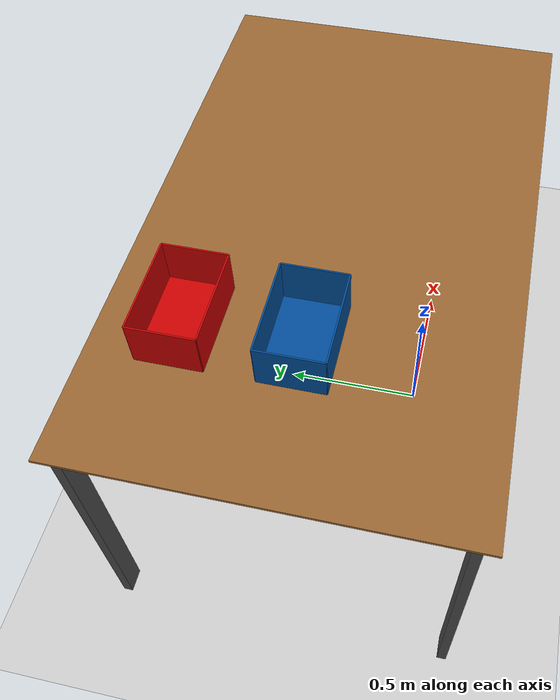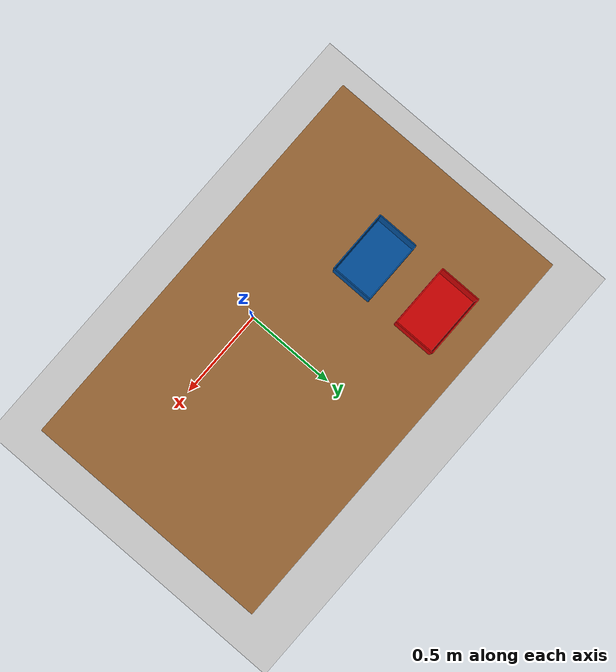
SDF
<sdf version="1.6">
 <world name="default">
  <include><uri>model://ground_plane</uri></include>
  <include><uri>model://sun</uri></include>
  <model name="mesa">
   <static>true</static>
   <pose>0 0.3 0 0 0 0</pose>
   <link name="tablero">
    <pose>0 0 0.98 0 0 0</pose>
    <visual name="visual">
     <geometry><box><size>2.0 1.21 0.01</size></box></geometry>
     <material><ambient>0.6 0.4 0.2 1</ambient><diffuse>0.6 0.4 0.2 1</diffuse></material>
    </visual>
    <collision name="collision"><geometry><box><size>2.0 1.21 0.01</size></box></geometry></collision>
   </link>
   <link name="pata1">
    <pose>-0.95 -0.55 0.49 0 0 0</pose>
    <visual name="visual">
     <geometry><box><size>0.07 0.03 0.98</size></box></geometry>
     <material><ambient>0.3 0.3 0.3 1</ambient></material>
    </visual>
    <collision name="collision"><geometry><box><size>0.07 0.03 0.98</size></box></geometry></collision>
   </link>
   <link name="pata2">
    <pose>0.95 -0.55 0.49 0 0 0</pose>
    <visual name="visual">
     <geometry><box><size>0.07 0.03 0.98</size></box></geometry>
     <material><ambient>0.3 0.3 0.3 1</ambient></material>
    </visual>
    <collision name="collision"><geometry><box><size>0.07 0.03 0.98</size></box></geometry></collision>
   </link>
   <link name="pata3">
    <pose>-0.95 0.55 0.49 0 0 0</pose>
    <visual name="visual">
     <geometry><box><size>0.07 0.03 0.98</size></box></geometry>
     <material><ambient>0.3 0.3 0.3 1</ambient></material>
    </visual>
    <collision name="collision"><geometry><box><size>0.07 0.03 0.98</size></box></geometry></collision>
   </link>
   <link name="pata4">
    <pose>0.95 0.55 0.49 0 0 0</pose>
    <visual name="visual">
     <geometry><box><size>0.07 0.03 0.98</size></box></geometry>
     <material><ambient>0.3 0.3 0.3 1</ambient></material>
    </visual>
    <collision name="collision"><geometry><box><size>0.07 0.03 0.98</size></box></geometry></collision>
   </link>
  </model>
  <model name="dropbox">
   <static>true</static>
   <link name="link">
    <pose>-0.5 0.3 0.99 0 0 0</pose>
    <visual name="base">
     <geometry><box><size>0.3 0.2 0.01</size></box></geometry>
     <material><ambient>0 0.3 0.6 1</ambient></material>
    </visual>
    <collision name="base_collision"><geometry><box><size>0.3 0.2 0.01</size></box></geometry></collision>
    <visual name="wall1">
     <pose>0 0.1 0.075 0 0 0</pose>
     <geometry><box><size>0.3 0.005 0.15</size></box></geometry>
     <material><ambient>0 0.3 0.6 1</ambient></material>
    </visual>
    <collision name="wall1_collision">
     <pose>0 0.1 0.075 0 0 0</pose>
     <geometry><box><size>0.3 0.005 0.15</size></box></geometry>
    </collision>
    <visual name="wall2">
     <pose>0 -0.1 0.075 0 0 0</pose>
     <geometry><box><size>0.3 0.005 0.15</size></box></geometry>
     <material><ambient>0 0.3 0.6 1</ambient></material>
    </visual>
    <collision name="wall2_collision">
     <pose>0 -0.1 0.075 0 0 0</pose>
     <geometry><box><size>0.3 0.005 0.15</size></box></geometry>
    </collision>
    <visual name="wall3">
     <pose>0.15 0 0.075 0 0 0</pose>
     <geometry><box><size>0.005 0.2 0.15</size></box></geometry>
     <material><ambient>0 0.3 0.6 1</ambient></material>
    </visual>
    <collision name="wall3_collision">
     <pose>0.15 0 0.075 0 0 0</pose>
     <geometry><box><size>0.005 0.2 0.15</size></box></geometry>
    </collision>
    <visual name="wall4">
     <pose>-0.15 0 0.075 0 0 0</pose>
     <geometry><box><size>0.005 0.2 0.15</size></box></geometry>
     <material><ambient>0 0.3 0.6 1</ambient></material>
    </visual>
    <collision name="wall4_collision">
     <pose>-0.15 0 0 0 0 0</pose>
     <geometry><box><size>0.005 0.2 0.15</size></box></geometry>
    </collision>
   </link>
  </model>
  <model name="dropbox2">
   <static>true</static>
   <link name="link">
    <pose>-0.5 0.65 0.99 0 0 0</pose>
    <visual name="base">
     <geometry><box><size>0.3 0.2 0.01</size></box></geometry>
     <material><ambient>0.8 0 0 1</ambient></material>
    </visual>
    <collision name="base_collision"><geometry><box><size>0.3 0.2 0.01</size></box></geometry></collision>
    <visual name="wall1">
     <pose>0 0.1 0.075 0 0 0</pose>
     <geometry><box><size>0.3 0.005 0.15</size></box></geometry>
     <material><ambient>0.8 0 0 1</ambient></material>
    </visual>
    <collision name="wall1_collision">
     <pose>0 0.1 0.075 0 0 0</pose>
     <geometry><box><size>0.3 0.005 0.15</size></box></geometry>
    </collision>
    <visual name="wall2">
     <pose>0 -0.1 0.075 0 0 0</pose>
     <geometry><box><size>0.3 0.005 0.15</size></box></geometry>
     <material><ambient>0.8 0 0 1</ambient></material>
    </visual>
    <collision name="wall2_collision">
     <pose>0 -0.1 0.075 0 0 0</pose>
     <geometry><box><size>0.3 0.005 0.15</size></box></geometry>
    </collision>
    <visual name="wall3">
     <pose>0.15 0 0.075 0 0 0</pose>
     <geometry><box><size>0.005 0.2 0.15</size></box></geometry>
     <material><ambient>0.8 0 0 1</ambient></material>
    </visual>
    <collision name="wall3_collision">
     <pose>0.15 0 0.075 0 0 0</pose>
     <geometry><box><size>0.005 0.2 0.15</size></box></geometry>
    </collision>
    <visual name="wall4">
     <pose>-0.15 0 0.075 0 0 0</pose>
     <geometry><box><size>0.005 0.2 0.15</size></box></geometry>
     <material><ambient>0.8 0 0 1</ambient></material>
    </visual>
    <collision name="wall4_collision">
     <pose>-0.15 0 0 0 0 0</pose>
     <geometry><box><size>0.005 0.2 0.15</size></box></geometry>
    </collision>
   </link>
  </model>
 </world>
</sdf>
